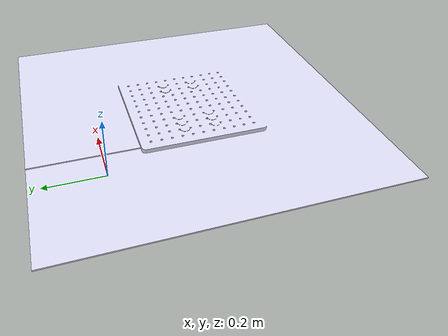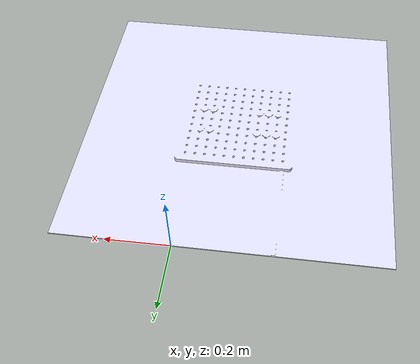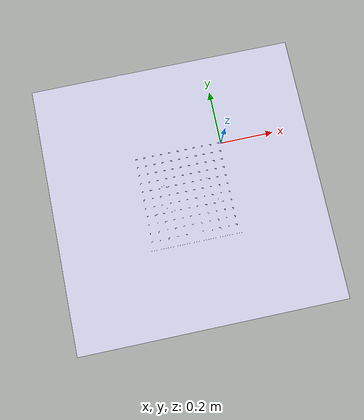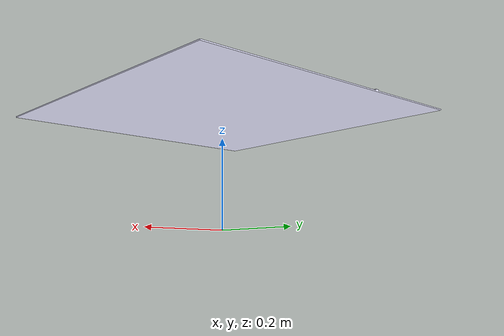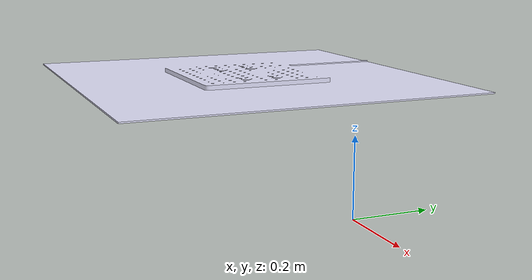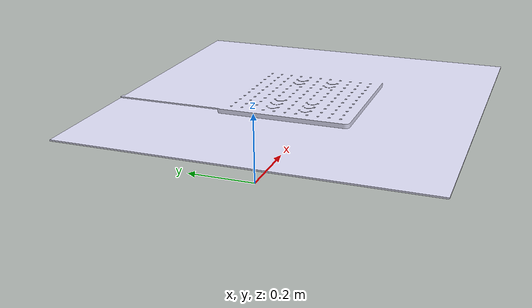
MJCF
<mujoco model="tube_insert_scene">
  <compiler angle="radian" meshdir="." autolimits="true" />

  <asset>
    <mesh name="tube_insert_scene" file="tube_insert_scene.STL" scale="0.001 0.001 0.001"/>
  </asset>

  <option sdf_iterations="15" sdf_initpoints="100"/>

  <worldbody>
    <body name="tube_insert_scene" pos="0 0 0">
      <geom type="mesh"
            pos="-0.575 -0.60 0.32"
            mesh="tube_insert_scene"
            rgba="0.9 0.9 2 1"
            friction="0.5 0.005 0.0001"
            solref="0.001 1"
            solimp="0.99 0.99 0.001"
            contype="0"
            conaffinity="0"/>
    </body>
  </worldbody>
</mujoco>
